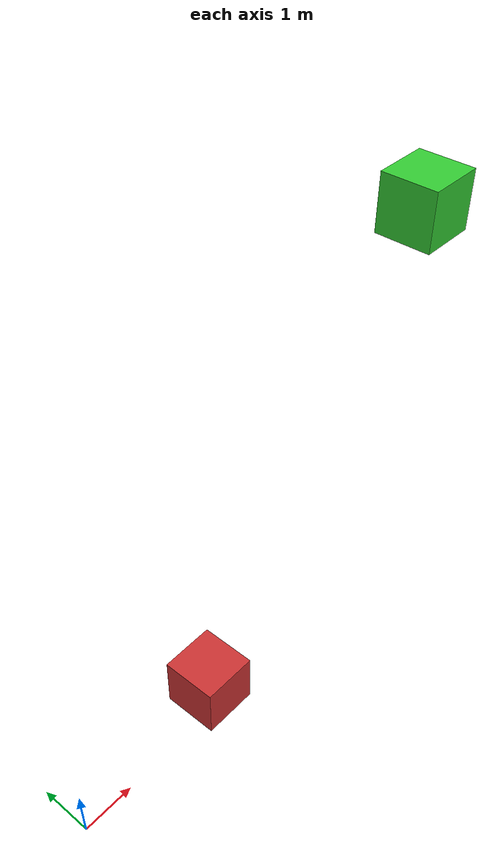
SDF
<?xml version="1.0" ?>
<sdf version="1.6">
  <world name="default">

<plugin filename="/home/david/workspace/src/ign-gazebo/examples/plugin/system_plugin/build/libAttachableJoint.so" name="attachable_joint::AttachableJoint">
    <detachtopic>/box2/detach</detachtopic>
    <attachtopic>/box2/attach</attachtopic>
</plugin>

  <model name="box1">
    <pose>3 0 1 0 0 0</pose>
    <link name="box_body">
      <visual name="v1">
        <geometry>
          <box><size>1 1 1</size></box>
        </geometry>
        <material>
          <diffuse>0.8 0.2 0.2 1</diffuse>
          <specular>1.0 0 0 1</specular>
        </material>
      </visual>
      <collision name="c1">
        <geometry>
          <box><size>1 1 1</size></box>
        </geometry>
      </collision>
    </link>
    <link name="AttachableLink_1">
    </link>
  </model>

  <model name="box2">
    <pose>8 0 8 0 0 0</pose>
    <link name="box_body">
      <visual name="v1">
        <geometry>
          <box><size>1 1 1</size></box>
        </geometry>
        <material>
          <diffuse>0.2 0.8 0.2 1</diffuse>
          <specular>1.0 0 0 1</specular>
        </material>
      </visual>
      <collision name="c1">
        <geometry>
          <box><size>1 1 1</size></box>
        </geometry>
      </collision>
    </link>
    <link name="AttachableLink_1">
    </link>

  </model>

  </world>
</sdf>
